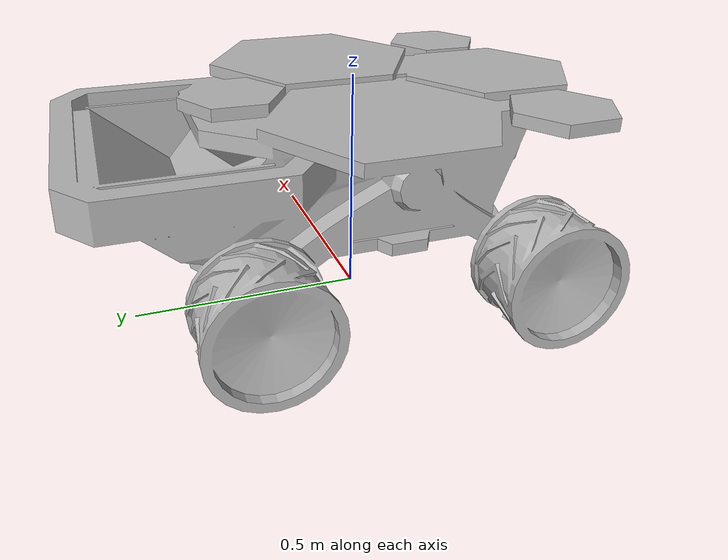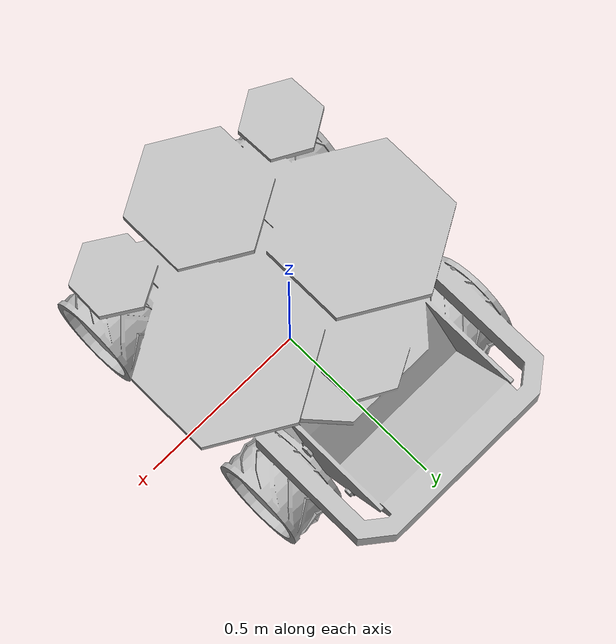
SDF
<?xml version="1.0" ?>
<sdf version="1.6">
  <model name="mars_rover">
    <static>true</static>
    <link name="link">
      <collision name="solar_panel_collision">
        <pose>0 -0.06945 0.47293 0 0 0</pose>
        <geometry>
          <box>
            <size>0.87974 0.8821 0.02602</size>
          </box>
        </geometry>
      </collision>

      <collision name="chassis_collision">
        <pose>0 -0.05 0.31475 0 0 0</pose>
        <geometry>
          <box>
            <size>0.49522 0.67401 0.28915</size>
          </box>
        </geometry>
      </collision>

      <collision name="rear_left_bumper_collision">
        <pose>0.30107 0.38350 0.38976 0 0 0</pose>
        <geometry>
          <box>
            <size>0.04442 0.388970 0.07918</size>
          </box>
        </geometry>
      </collision>

      <collision name="rear_right_bumper_collision">
        <pose>-0.30107 0.38350 0.38976 0 0 0</pose>
        <geometry>
          <box>
            <size>0.04442 0.388970 0.07918</size>
          </box>
        </geometry>
      </collision>

      <collision name="rear_bumper_collision">
        <pose>0 0.59414 0.38976 0 0 0</pose>
        <geometry>
          <box>
            <size>0.566560 0.04442 0.07918</size>
          </box>
        </geometry>
      </collision>

      <collision name="bin_back_panel_collision">
        <pose>0 0.47 0.32114 0.69137 0 0</pose>
        <geometry>
          <box>
            <size>0.43774 0.212366009 0.05173</size>
          </box>
        </geometry>
      </collision>

      <collision name="bin_left_panel_collision1">
        <pose>0.22615 0.328970 0.33193 0 0 0</pose>
        <geometry>
          <box>
            <size>0.01116 0.19338 0.16304</size>
          </box>
        </geometry>
      </collision>

      <collision name="bin_left_panel_collision2">
        <pose>0.22615 0.471 0.393080 0 0 0</pose>
        <geometry>
          <box>
            <size>0.01116 0.15 0.04</size>
          </box>
        </geometry>
      </collision>

      <collision name="bin_left_panel_collision3">
        <pose>0.22615 0.450 0.353080 0 0 0</pose>
        <geometry>
          <box>
            <size>0.01116 0.15 0.04</size>
          </box>
        </geometry>
      </collision>

      <collision name="bin_left_panel_collision4">
        <pose>0.22615 0.39308 0.313080 0 0 0</pose>
        <geometry>
          <box>
            <size>0.01116 0.15 0.04</size>
          </box>
        </geometry>
      </collision>

      <collision name="bin_right_panel_collision1">
        <pose>-0.22615 0.328970 0.33193 0 0 0</pose>
        <geometry>
          <box>
            <size>0.01116 0.19338 0.16304</size>
          </box>
        </geometry>
      </collision>

      <collision name="bin_right_panel_collision2">
        <pose>-0.22615 0.471 0.393080 0 0 0</pose>
        <geometry>
          <box>
            <size>0.01116 0.15 0.04</size>
          </box>
        </geometry>
      </collision>

      <collision name="bin_right_panel_collision3">
        <pose>-0.22615 0.450 0.353080 0 0 0</pose>
        <geometry>
          <box>
            <size>0.01116 0.15 0.04</size>
          </box>
        </geometry>
      </collision>

      <collision name="bin_right_panel_collision4">
        <pose>-0.22615 0.39308 0.313080 0 0 0</pose>
        <geometry>
          <box>
            <size>0.01116 0.15 0.04</size>
          </box>
        </geometry>
      </collision>

      <collision name="bin_front_panel_collision">
        <pose>0 0.300470 0.32114 2.26207 0 0</pose>
        <geometry>
          <box>
            <size>0.43774 0.212366009 0.05173</size>
          </box>
        </geometry>
      </collision>

      <collision name="front_left_wheel_collision">
        <pose>0.31103 -0.32115 0.13580 1.5707 0 1.5707</pose>
        <geometry>
          <cylinder>
            <radius>0.1358</radius>
            <length>0.1641</length>
          </cylinder>
        </geometry>
      </collision>
      <collision name="front_right_wheel_collision">
        <pose>-0.31103 -0.32115 0.13580 1.5707 0 1.5707</pose>
        <geometry>
          <cylinder>
            <radius>0.1358</radius>
            <length>0.1641</length>
          </cylinder>
        </geometry>
      </collision>

      <collision name="rear_left_wheel_collision">
        <pose>0.31103 0.28049 0.13580 1.5707 0 1.5707</pose>
        <geometry>
          <cylinder>
            <radius>0.1358</radius>
            <length>0.1641</length>
          </cylinder>
        </geometry>
      </collision>

      <collision name="rear_right_wheel_collision">
        <pose>-0.31103 0.28049 0.13580 1.5707 0 1.5707</pose>
        <geometry>
          <cylinder>
            <radius>0.1358</radius>
            <length>0.1641</length>
          </cylinder>
        </geometry>
      </collision>

      <visual name="visual">
        <geometry>
          <mesh>
            <uri>model://mars_rover/meshes/rover.dae</uri>
          </mesh>
        </geometry>
      </visual>
    </link>
  </model>
</sdf>
